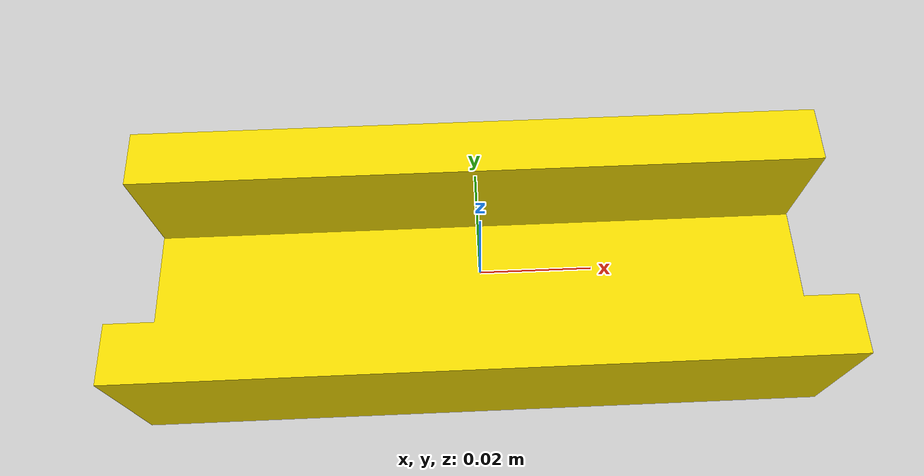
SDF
<?xml version="1.0"?>
<sdf version="1.9">
  <model name="bread2">
    <static>false</static>
    <link name="bread2_link">
      <velocity_decay>
        <linear>1.200000</linear>
        <angular>2.000000</angular>
      </velocity_decay>
      <inertial>
        <mass>0.015000</mass>
        <inertia>
          <ixx>0.000015000</ixx>
          <iyy>0.000015000</iyy>
          <izz>0.000015000</izz>
          <ixy>0</ixy>
          <ixz>0</ixz>
          <iyz>0</iyz>
        </inertia>
      </inertial>
      <visual name="bread2_visual">
        <geometry>
          <mesh>
            <uri>meshes/bread2.obj</uri>
          </mesh>
        </geometry>
        <material>
          <ambient>0.250000 0.225000 0.000000 1.000000</ambient>
          <diffuse>1.000000 0.900000 0.000000 1.000000</diffuse>
          <specular>0.120000 0.120000 0.120000 1.000000</specular>
        </material>
      </visual>
      <collision name="bread2_bread2_bottom_collision">
        <pose>0.000000000 -0.000300001 -0.010399997 0 0 0</pose>
        <geometry>
          <box>
            <size>0.119999997 0.025000017 0.009999998</size>
          </box>
        </geometry>
        <max_contacts>20</max_contacts>
        <surface>
          <friction>
            <ode>
              <mu>100.0</mu>
              <mu2>100.0</mu2>
              <slip1>0.0</slip1>
              <slip2>0.0</slip2>
            </ode>
            <torsional>
              <coefficient>1.0</coefficient>
              <use_patch_radius>true</use_patch_radius>
              <patch_radius>0.020000</patch_radius>
              <surface_radius>0.010000</surface_radius>
              <ode>
                <slip>0.0</slip>
              </ode>
            </torsional>
          </friction>
          <contact>
            <ode>
              <soft_cfm>0.000000</soft_cfm>
              <soft_erp>0.800000</soft_erp>
              <kp>1000000.000000</kp>
              <kd>100.000000</kd>
              <max_vel>0.010000</max_vel>
              <min_depth>0.002000</min_depth>
            </ode>
          </contact>
        </surface>
      </collision>
      <collision name="bread2_bread2_left_collision">
        <pose>0.000000000 0.017299999 0.002499998 0 0 0</pose>
        <geometry>
          <box>
            <size>0.119999990 0.010000017 0.024999999</size>
          </box>
        </geometry>
        <max_contacts>20</max_contacts>
        <surface>
          <friction>
            <ode>
              <mu>100.0</mu>
              <mu2>100.0</mu2>
              <slip1>0.0</slip1>
              <slip2>0.0</slip2>
            </ode>
            <torsional>
              <coefficient>1.0</coefficient>
              <use_patch_radius>true</use_patch_radius>
              <patch_radius>0.020000</patch_radius>
              <surface_radius>0.010000</surface_radius>
              <ode>
                <slip>0.0</slip>
              </ode>
            </torsional>
          </friction>
          <contact>
            <ode>
              <soft_cfm>0.000000</soft_cfm>
              <soft_erp>0.800000</soft_erp>
              <kp>1000000.000000</kp>
              <kd>100.000000</kd>
              <max_vel>0.010000</max_vel>
              <min_depth>0.002000</min_depth>
            </ode>
          </contact>
        </surface>
      </collision>
      <collision name="bread2_bread2_right_collision">
        <pose>0.000000000 -0.017900001 0.002400011 0 0 0</pose>
        <geometry>
          <box>
            <size>0.119999990 0.010000017 0.024999999</size>
          </box>
        </geometry>
        <max_contacts>20</max_contacts>
        <surface>
          <friction>
            <ode>
              <mu>100.0</mu>
              <mu2>100.0</mu2>
              <slip1>0.0</slip1>
              <slip2>0.0</slip2>
            </ode>
            <torsional>
              <coefficient>1.0</coefficient>
              <use_patch_radius>true</use_patch_radius>
              <patch_radius>0.020000</patch_radius>
              <surface_radius>0.010000</surface_radius>
              <ode>
                <slip>0.0</slip>
              </ode>
            </torsional>
          </friction>
          <contact>
            <ode>
              <soft_cfm>0.000000</soft_cfm>
              <soft_erp>0.800000</soft_erp>
              <kp>1000000.000000</kp>
              <kd>100.000000</kd>
              <max_vel>0.010000</max_vel>
              <min_depth>0.002000</min_depth>
            </ode>
          </contact>
        </surface>
      </collision>
    </link>
  </model>
</sdf>
